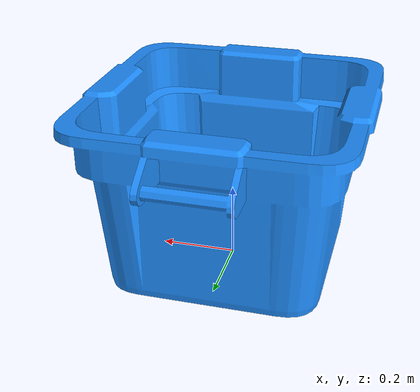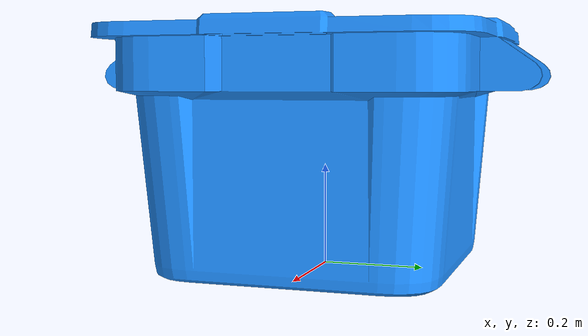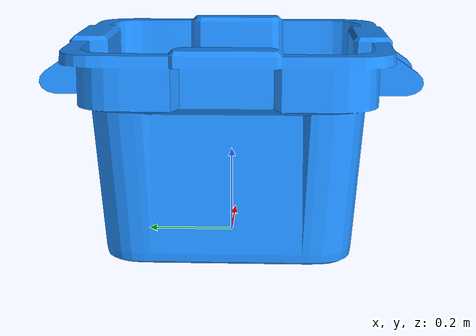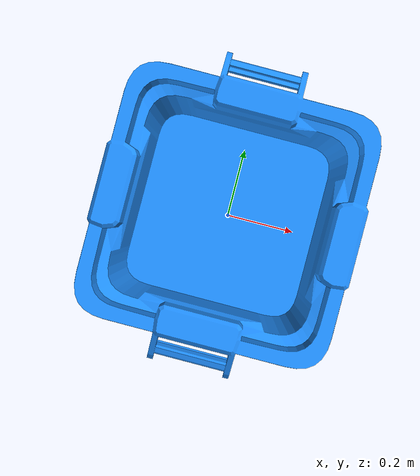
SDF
<?xml version="1.0" ?>
<sdf version="1.6">
  <model name="dropped_part_bin">
    <static>true</static>
    <link name="dropped_part_bin">

      <collision name='collision'>
        <geometry>
            <mesh>
            <uri>model://dropped_part_bin/meshes/disposal_bin.stl</uri>
            </mesh>
          </geometry>
      </collision>
      <visual name="visual">
        <geometry>
          <mesh>
            <uri>model://dropped_part_bin/meshes/disposal_bin.stl</uri>
          </mesh>
        </geometry>
        <material>
          <ambient>0.12 0.56 1.0 1.0</ambient>
          <diffuse>0.12 0.56 1.0 1.0</diffuse>
        </material>
       </visual>

        <sensor type="contact" name="bumper">
          <update_rate>1</update_rate>
          <contact>
            <collision>collision</collision>
          </contact>
      </sensor>
    </link>
  </model>
</sdf>
